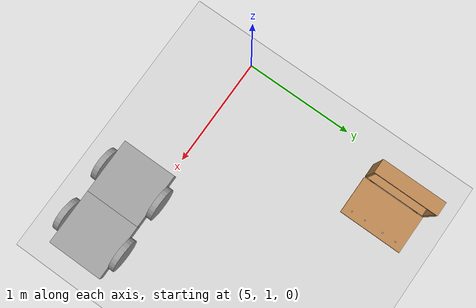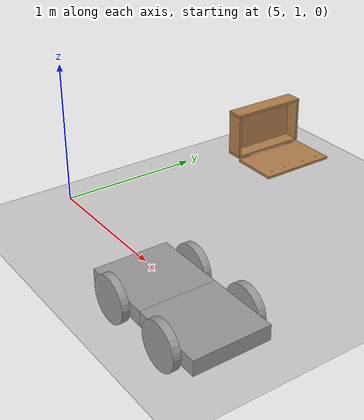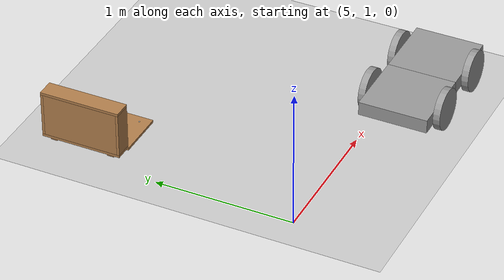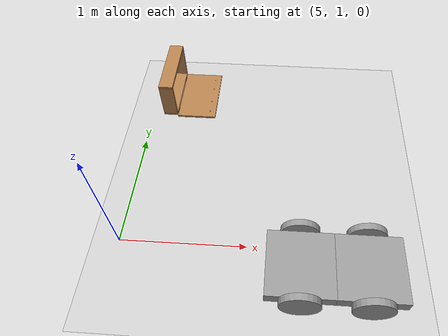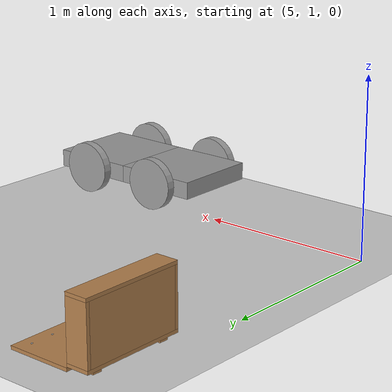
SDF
<sdf version="1.6">
 <world name="default">
  <model name="ground_plane">
   <static>1</static>
   <link name="link">
    <collision name="collision">
     <geometry><plane><normal>0 0 1</normal><size>100 100</size></plane></geometry>
     <surface>
      <contact><collide_bitmask>65535</collide_bitmask></contact>
      <friction><ode><mu>100</mu><mu2>50</mu2></ode></friction>
     </surface>
    </collision>
    <visual name="visual">
     <cast_shadows>0</cast_shadows>
     <geometry><plane><normal>0 0 1</normal><size>100 100</size></plane></geometry>
     <material>
      <script><uri>file://media/materials/scripts/gazebo.material</uri><name>Gazebo/Grey</name></script>
     </material>
    </visual>
   </link>
  </model>
  <model name="cart">
   <link name="link_0_clone">
    <pose>-0.250001 -0 0 0 -0 0</pose>
    <inertial>
     <mass>1</mass>
     <inertia>
      <ixx>0.166667</ixx>
      <ixy>0</ixy>
      <ixz>0</ixz>
      <iyy>0.166667</iyy>
      <iyz>0</iyz>
      <izz>0.166667</izz>
     </inertia>
    </inertial>
    <visual name="visual">
     <geometry><box><size>0.5 0.5 0.1</size></box></geometry>
     <material>
      <lighting>1</lighting>
      <script><uri>file://media/materials/scripts/gazebo.material</uri><name>Gazebo/Grey</name></script>
      <shader type="pixel"><normal_map>__default__</normal_map></shader>
      <ambient>0.3 0.3 0.3 1</ambient>
      <diffuse>0.7 0.7 0.7 1</diffuse>
      <specular>0.01 0.01 0.01 1</specular>
      <emissive>0 0 0 1</emissive>
     </material>
    </visual>
    <collision name="collision">
     <geometry><box><size>0.5 0.5 0.1</size></box></geometry>
     <surface>
      <friction>
       <ode><mu>1</mu><mu2>1</mu2><fdir1>0 0 0</fdir1><slip1>0</slip1><slip2>0</slip2></ode>
       <torsional>
        <coefficient>1</coefficient>
        <patch_radius>0</patch_radius>
        <surface_radius>0</surface_radius>
        <use_patch_radius>1</use_patch_radius>
        <ode><slip>0</slip></ode>
       </torsional>
      </friction>
      <bounce><restitution_coefficient>0</restitution_coefficient><threshold>1e+06</threshold></bounce>
      <contact>
       <collide_without_contact>0</collide_without_contact>
       <collide_without_contact_bitmask>1</collide_without_contact_bitmask>
       <collide_bitmask>1</collide_bitmask>
       <ode>
        <soft_cfm>0</soft_cfm>
        <soft_erp>0.2</soft_erp>
        <kp>1e+13</kp>
        <kd>1</kd>
        <max_vel>0.01</max_vel>
        <min_depth>0</min_depth>
       </ode>
       <bullet>
        <split_impulse>1</split_impulse>
        <split_impulse_penetration_threshold>-0.01</split_impulse_penetration_threshold>
        <soft_cfm>0</soft_cfm>
        <soft_erp>0.2</soft_erp>
        <kp>1e+13</kp>
        <kd>1</kd>
       </bullet>
      </contact>
     </surface>
    </collision>
   </link>
   <link name="link_0_clone_0">
    <pose>0.249999 -0 0 0 -0 0</pose>
    <inertial>
     <mass>1</mass>
     <inertia>
      <ixx>0.166667</ixx>
      <ixy>0</ixy>
      <ixz>0</ixz>
      <iyy>0.166667</iyy>
      <iyz>0</iyz>
      <izz>0.166667</izz>
     </inertia>
    </inertial>
    <visual name="visual">
     <geometry><box><size>0.5 0.5 0.1</size></box></geometry>
     <material>
      <lighting>1</lighting>
      <script><uri>file://media/materials/scripts/gazebo.material</uri><name>Gazebo/Grey</name></script>
      <shader type="pixel"><normal_map>__default__</normal_map></shader>
      <ambient>0.3 0.3 0.3 1</ambient>
      <diffuse>0.7 0.7 0.7 1</diffuse>
      <specular>0.01 0.01 0.01 1</specular>
      <emissive>0 0 0 1</emissive>
     </material>
    </visual>
    <collision name="collision">
     <geometry><box><size>0.5 0.5 0.1</size></box></geometry>
     <surface>
      <friction>
       <ode><mu>1</mu><mu2>1</mu2><fdir1>0 0 0</fdir1><slip1>0</slip1><slip2>0</slip2></ode>
       <torsional>
        <coefficient>1</coefficient>
        <patch_radius>0</patch_radius>
        <surface_radius>0</surface_radius>
        <use_patch_radius>1</use_patch_radius>
        <ode><slip>0</slip></ode>
       </torsional>
      </friction>
      <bounce><restitution_coefficient>0</restitution_coefficient><threshold>1e+06</threshold></bounce>
      <contact>
       <collide_without_contact>0</collide_without_contact>
       <collide_without_contact_bitmask>1</collide_without_contact_bitmask>
       <collide_bitmask>1</collide_bitmask>
       <ode>
        <soft_cfm>0</soft_cfm>
        <soft_erp>0.2</soft_erp>
        <kp>1e+13</kp>
        <kd>1</kd>
        <max_vel>0.01</max_vel>
        <min_depth>0</min_depth>
       </ode>
       <bullet>
        <split_impulse>1</split_impulse>
        <split_impulse_penetration_threshold>-0.01</split_impulse_penetration_threshold>
        <soft_cfm>0</soft_cfm>
        <soft_erp>0.2</soft_erp>
        <kp>1e+13</kp>
        <kd>1</kd>
       </bullet>
      </contact>
     </surface>
    </collision>
   </link>
   <link name="link_1_clone">
    <pose>-0.250001 -0.275119 0 0 -0 0</pose>
    <inertial>
     <mass>1</mass>
     <inertia><ixx>0.145833</ixx><ixy>0</ixy><ixz>0</ixz><iyy>0.145833</iyy><iyz>0</iyz><izz>0.125</izz></inertia>
    </inertial>
    <visual name="visual">
     <pose>0 0 0 1.57 -0 0</pose>
     <geometry><cylinder><radius>0.15</radius><length>0.05</length></cylinder></geometry>
     <material>
      <lighting>1</lighting>
      <script><uri>file://media/materials/scripts/gazebo.material</uri><name>Gazebo/Grey</name></script>
      <shader type="pixel"><normal_map>__default__</normal_map></shader>
      <ambient>0.3 0.3 0.3 1</ambient>
      <diffuse>0.7 0.7 0.7 1</diffuse>
      <specular>0.01 0.01 0.01 1</specular>
      <emissive>0 0 0 1</emissive>
     </material>
    </visual>
    <collision name="collision">
     <pose>0 0 0 1.5707 -0 0</pose>
     <geometry><cylinder><radius>0.15</radius><length>0.05</length></cylinder></geometry>
     <surface>
      <friction>
       <ode><mu>1</mu><mu2>1</mu2><fdir1>0 0 0</fdir1><slip1>0</slip1><slip2>0</slip2></ode>
       <torsional>
        <coefficient>1</coefficient>
        <patch_radius>0</patch_radius>
        <surface_radius>0</surface_radius>
        <use_patch_radius>1</use_patch_radius>
        <ode><slip>0</slip></ode>
       </torsional>
      </friction>
      <bounce><restitution_coefficient>0</restitution_coefficient><threshold>1e+06</threshold></bounce>
      <contact>
       <collide_without_contact>0</collide_without_contact>
       <collide_without_contact_bitmask>1</collide_without_contact_bitmask>
       <collide_bitmask>1</collide_bitmask>
       <ode>
        <soft_cfm>0</soft_cfm>
        <soft_erp>0.2</soft_erp>
        <kp>1e+13</kp>
        <kd>1</kd>
        <max_vel>0.01</max_vel>
        <min_depth>0</min_depth>
       </ode>
       <bullet>
        <split_impulse>1</split_impulse>
        <split_impulse_penetration_threshold>-0.01</split_impulse_penetration_threshold>
        <soft_cfm>0</soft_cfm>
        <soft_erp>0.2</soft_erp>
        <kp>1e+13</kp>
        <kd>1</kd>
       </bullet>
      </contact>
     </surface>
    </collision>
   </link>
   <link name="link_1_clone_0">
    <pose>-0.250001 0.275119 0 0 -0 0</pose>
    <inertial>
     <mass>1</mass>
     <inertia><ixx>0.145833</ixx><ixy>0</ixy><ixz>0</ixz><iyy>0.145833</iyy><iyz>0</iyz><izz>0.125</izz></inertia>
    </inertial>
    <visual name="visual">
     <pose>0 0 0 1.57 -0 0</pose>
     <geometry><cylinder><radius>0.15</radius><length>0.05</length></cylinder></geometry>
     <material>
      <lighting>1</lighting>
      <script><uri>file://media/materials/scripts/gazebo.material</uri><name>Gazebo/Grey</name></script>
      <shader type="pixel"><normal_map>__default__</normal_map></shader>
      <ambient>0.3 0.3 0.3 1</ambient>
      <diffuse>0.7 0.7 0.7 1</diffuse>
      <specular>0.01 0.01 0.01 1</specular>
      <emissive>0 0 0 1</emissive>
     </material>
    </visual>
    <collision name="collision">
     <pose>0 0 0 1.5707 -0 0</pose>
     <geometry><cylinder><radius>0.15</radius><length>0.05</length></cylinder></geometry>
     <surface>
      <friction>
       <ode><mu>1</mu><mu2>1</mu2><fdir1>0 0 0</fdir1><slip1>0</slip1><slip2>0</slip2></ode>
       <torsional>
        <coefficient>1</coefficient>
        <patch_radius>0</patch_radius>
        <surface_radius>0</surface_radius>
        <use_patch_radius>1</use_patch_radius>
        <ode><slip>0</slip></ode>
       </torsional>
      </friction>
      <bounce><restitution_coefficient>0</restitution_coefficient><threshold>1e+06</threshold></bounce>
      <contact>
       <collide_without_contact>0</collide_without_contact>
       <collide_without_contact_bitmask>1</collide_without_contact_bitmask>
       <collide_bitmask>1</collide_bitmask>
       <ode>
        <soft_cfm>0</soft_cfm>
        <soft_erp>0.2</soft_erp>
        <kp>1e+13</kp>
        <kd>1</kd>
        <max_vel>0.01</max_vel>
        <min_depth>0</min_depth>
       </ode>
       <bullet>
        <split_impulse>1</split_impulse>
        <split_impulse_penetration_threshold>-0.01</split_impulse_penetration_threshold>
        <soft_cfm>0</soft_cfm>
        <soft_erp>0.2</soft_erp>
        <kp>1e+13</kp>
        <kd>1</kd>
       </bullet>
      </contact>
     </surface>
    </collision>
   </link>
   <link name="link_1_clone_1">
    <pose>0.249999 -0.275119 0 0 -0 0</pose>
    <inertial>
     <mass>1</mass>
     <inertia><ixx>0.145833</ixx><ixy>0</ixy><ixz>0</ixz><iyy>0.145833</iyy><iyz>0</iyz><izz>0.125</izz></inertia>
    </inertial>
    <visual name="visual">
     <pose>0 0 0 1.57 -0 0</pose>
     <geometry><cylinder><radius>0.15</radius><length>0.05</length></cylinder></geometry>
     <material>
      <lighting>1</lighting>
      <script><uri>file://media/materials/scripts/gazebo.material</uri><name>Gazebo/Grey</name></script>
      <shader type="pixel"><normal_map>__default__</normal_map></shader>
      <ambient>0.3 0.3 0.3 1</ambient>
      <diffuse>0.7 0.7 0.7 1</diffuse>
      <specular>0.01 0.01 0.01 1</specular>
      <emissive>0 0 0 1</emissive>
     </material>
    </visual>
    <collision name="collision">
     <pose>0 0 0 1.5707 -0 0</pose>
     <geometry><cylinder><radius>0.15</radius><length>0.05</length></cylinder></geometry>
     <surface>
      <friction>
       <ode><mu>1</mu><mu2>1</mu2><fdir1>0 0 0</fdir1><slip1>0</slip1><slip2>0</slip2></ode>
       <torsional>
        <coefficient>1</coefficient>
        <patch_radius>0</patch_radius>
        <surface_radius>0</surface_radius>
        <use_patch_radius>1</use_patch_radius>
        <ode><slip>0</slip></ode>
       </torsional>
      </friction>
      <bounce><restitution_coefficient>0</restitution_coefficient><threshold>1e+06</threshold></bounce>
      <contact>
       <collide_without_contact>0</collide_without_contact>
       <collide_without_contact_bitmask>1</collide_without_contact_bitmask>
       <collide_bitmask>1</collide_bitmask>
       <ode>
        <soft_cfm>0</soft_cfm>
        <soft_erp>0.2</soft_erp>
        <kp>1e+13</kp>
        <kd>1</kd>
        <max_vel>0.01</max_vel>
        <min_depth>0</min_depth>
       </ode>
       <bullet>
        <split_impulse>1</split_impulse>
        <split_impulse_penetration_threshold>-0.01</split_impulse_penetration_threshold>
        <soft_cfm>0</soft_cfm>
        <soft_erp>0.2</soft_erp>
        <kp>1e+13</kp>
        <kd>1</kd>
       </bullet>
      </contact>
     </surface>
    </collision>
   </link>
   <link name="link_1_clone_2">
    <pose>0.249999 0.275119 0 0 -0 0</pose>
    <inertial>
     <mass>1</mass>
     <inertia><ixx>0.145833</ixx><ixy>0</ixy><ixz>0</ixz><iyy>0.145833</iyy><iyz>0</iyz><izz>0.125</izz></inertia>
    </inertial>
    <visual name="visual">
     <pose>0 0 0 1.57 -0 0</pose>
     <geometry><cylinder><radius>0.15</radius><length>0.05</length></cylinder></geometry>
     <material>
      <lighting>1</lighting>
      <script><uri>file://media/materials/scripts/gazebo.material</uri><name>Gazebo/Grey</name></script>
      <shader type="pixel"><normal_map>__default__</normal_map></shader>
      <ambient>0.3 0.3 0.3 1</ambient>
      <diffuse>0.7 0.7 0.7 1</diffuse>
      <specular>0.01 0.01 0.01 1</specular>
      <emissive>0 0 0 1</emissive>
     </material>
    </visual>
    <collision name="collision">
     <pose>0 0 0 1.5707 -0 0</pose>
     <geometry><cylinder><radius>0.15</radius><length>0.05</length></cylinder></geometry>
     <surface>
      <friction>
       <ode><mu>1</mu><mu2>1</mu2><fdir1>0 0 0</fdir1><slip1>0</slip1><slip2>0</slip2></ode>
       <torsional>
        <coefficient>1</coefficient>
        <patch_radius>0</patch_radius>
        <surface_radius>0</surface_radius>
        <use_patch_radius>1</use_patch_radius>
        <ode><slip>0</slip></ode>
       </torsional>
      </friction>
      <bounce><restitution_coefficient>0</restitution_coefficient><threshold>1e+06</threshold></bounce>
      <contact>
       <collide_without_contact>0</collide_without_contact>
       <collide_without_contact_bitmask>1</collide_without_contact_bitmask>
       <collide_bitmask>1</collide_bitmask>
       <ode>
        <soft_cfm>0</soft_cfm>
        <soft_erp>0.2</soft_erp>
        <kp>1e+13</kp>
        <kd>1</kd>
        <max_vel>0.01</max_vel>
        <min_depth>0</min_depth>
       </ode>
       <bullet>
        <split_impulse>1</split_impulse>
        <split_impulse_penetration_threshold>-0.01</split_impulse_penetration_threshold>
        <soft_cfm>0</soft_cfm>
        <soft_erp>0.2</soft_erp>
        <kp>1e+13</kp>
        <kd>1</kd>
       </bullet>
      </contact>
     </surface>
    </collision>
   </link>
   <joint name="link_0_clone_0_JOINT_5" type="revolute">
    <parent>link_0_clone_0</parent>
    <child>link_1_clone_1</child>
    <axis>
     <xyz>1 0 0</xyz>
     <use_parent_model_frame>0</use_parent_model_frame>
     <limit>
      <lower>-1.79769e+308</lower>
      <upper>1.79769e+308</upper>
      <effort>-1</effort>
      <velocity>-1</velocity>
     </limit>
     <dynamics>
      <spring_reference>0</spring_reference>
      <spring_stiffness>0</spring_stiffness>
      <damping>0</damping>
     </dynamics>
    </axis>
    <physics>
     <ode><limit><cfm>0</cfm><erp>0.2</erp></limit><suspension><cfm>0</cfm><erp>0.2</erp></suspension></ode>
    </physics>
   </joint>
   <joint name="link_0_clone_0_JOINT_6" type="revolute">
    <parent>link_0_clone_0</parent>
    <child>link_1_clone_2</child>
    <axis>
     <xyz>1 0 0</xyz>
     <use_parent_model_frame>0</use_parent_model_frame>
     <limit>
      <lower>-1.79769e+308</lower>
      <upper>1.79769e+308</upper>
      <effort>-1</effort>
      <velocity>-1</velocity>
     </limit>
     <dynamics>
      <spring_reference>0</spring_reference>
      <spring_stiffness>0</spring_stiffness>
      <damping>0</damping>
     </dynamics>
    </axis>
    <physics>
     <ode><limit><cfm>0</cfm><erp>0.2</erp></limit><suspension><cfm>0</cfm><erp>0.2</erp></suspension></ode>
    </physics>
   </joint>
   <joint name="link_0_clone_JOINT_1" type="revolute">
    <parent>link_0_clone</parent>
    <child>link_1_clone</child>
    <axis>
     <xyz>1 0 0</xyz>
     <use_parent_model_frame>0</use_parent_model_frame>
     <limit>
      <lower>-1.79769e+308</lower>
      <upper>1.79769e+308</upper>
      <effort>-1</effort>
      <velocity>-1</velocity>
     </limit>
     <dynamics>
      <spring_reference>0</spring_reference>
      <spring_stiffness>0</spring_stiffness>
      <damping>0</damping>
     </dynamics>
    </axis>
    <physics>
     <ode><limit><cfm>0</cfm><erp>0.2</erp></limit><suspension><cfm>0</cfm><erp>0.2</erp></suspension></ode>
    </physics>
   </joint>
   <joint name="link_0_clone_JOINT_2" type="revolute">
    <parent>link_0_clone</parent>
    <child>link_1_clone_0</child>
    <axis>
     <xyz>1 0 0</xyz>
     <use_parent_model_frame>0</use_parent_model_frame>
     <limit>
      <lower>-1.79769e+308</lower>
      <upper>1.79769e+308</upper>
      <effort>-1</effort>
      <velocity>-1</velocity>
     </limit>
     <dynamics>
      <spring_reference>0</spring_reference>
      <spring_stiffness>0</spring_stiffness>
      <damping>0</damping>
     </dynamics>
    </axis>
    <physics>
     <ode><limit><cfm>0</cfm><erp>0.2</erp></limit><suspension><cfm>0</cfm><erp>0.2</erp></suspension></ode>
    </physics>
   </joint>
   <joint name="link_0_clone_JOINT_4" type="fixed">
    <parent>link_0_clone</parent>
    <child>link_0_clone_0</child>
    <physics>
     <ode><limit><cfm>0</cfm><erp>0.2</erp></limit><suspension><cfm>0</cfm><erp>0.2</erp></suspension></ode>
    </physics>
   </joint>
   <static>0</static>
   <pose>6.65176 0.808128 0.15 0 -0 0.000692</pose>
  </model>
  <model name="wooden_case">
   <link name="base">
    <pose>0 0 0.024 0 -0 0</pose>
    <inertial>
     <pose>-0.022184 0 0.171592 0 -0 0</pose>
     <mass>3.96264</mass>
     <inertia>
      <ixx>0.213536</ixx>
      <ixy>0</ixy>
      <ixz>0.000779377</ixz>
      <iyy>0.0708943</iyy>
      <iyz>0</iyz>
      <izz>0.154604</izz>
     </inertia>
    </inertial>
    <collision name="collision_back">
     <pose>-0.053975 0 0.1778 0 -0 0</pose>
     <geometry><box><size>0.01905 0.5461 0.3175</size></box></geometry>
     <surface>
      <contact>
       <poissons_ratio>0.347</poissons_ratio>
       <elastic_modulus>8.8e+09</elastic_modulus>
       <ode><kp>100000</kp><kd>100</kd><max_vel>100</max_vel><min_depth>0.001</min_depth></ode>
      </contact>
      <friction>
       <torsional>
        <coefficient>1</coefficient>
        <use_patch_radius>0</use_patch_radius>
        <surface_radius>0.01</surface_radius>
       </torsional>
      </friction>
     </surface>
    </collision>
    <visual name="visual_back">
     <pose>-0.053975 0 0.1778 0 -0 0</pose>
     <geometry><box><size>0.01905 0.5461 0.3175</size></box></geometry>
     <material>
      <script><uri>file://media/materials/scripts/gazebo.material</uri><name>Gazebo/Wood</name></script>
     </material>
    </visual>
    <collision name="collision_bottom">
     <pose>0 0 0.009525 0 -0 0</pose>
     <geometry><box><size>0.127 0.5842 0.01905</size></box></geometry>
     <surface>
      <contact>
       <poissons_ratio>0.347</poissons_ratio>
       <elastic_modulus>8.8e+09</elastic_modulus>
       <ode><kp>100000</kp><kd>100</kd><max_vel>100</max_vel><min_depth>0.001</min_depth></ode>
      </contact>
      <friction>
       <torsional>
        <coefficient>1</coefficient>
        <use_patch_radius>0</use_patch_radius>
        <surface_radius>0.01</surface_radius>
       </torsional>
      </friction>
     </surface>
    </collision>
    <visual name="visual_bottom">
     <pose>0 0 0.009525 0 -0 0</pose>
     <geometry><box><size>0.127 0.5842 0.01905</size></box></geometry>
     <material>
      <script><uri>file://media/materials/scripts/gazebo.material</uri><name>Gazebo/Wood</name></script>
     </material>
    </visual>
    <collision name="collision_top">
     <pose>0 0 0.346075 0 -0 0</pose>
     <geometry><box><size>0.127 0.5842 0.01905</size></box></geometry>
     <surface>
      <contact>
       <poissons_ratio>0.347</poissons_ratio>
       <elastic_modulus>8.8e+09</elastic_modulus>
       <ode><kp>100000</kp><kd>100</kd><max_vel>100</max_vel><min_depth>0.001</min_depth></ode>
      </contact>
      <friction>
       <torsional>
        <coefficient>1</coefficient>
        <use_patch_radius>0</use_patch_radius>
        <surface_radius>0.01</surface_radius>
       </torsional>
      </friction>
     </surface>
    </collision>
    <visual name="visual_top">
     <pose>0 0 0.346075 0 -0 0</pose>
     <geometry><box><size>0.127 0.5842 0.01905</size></box></geometry>
     <material>
      <script><uri>file://media/materials/scripts/gazebo.material</uri><name>Gazebo/Wood</name></script>
     </material>
    </visual>
    <collision name="collision_left">
     <pose>0 -0.282575 0.1778 0 -0 0</pose>
     <geometry><box><size>0.127 0.01905 0.3175</size></box></geometry>
     <surface>
      <contact>
       <poissons_ratio>0.347</poissons_ratio>
       <elastic_modulus>8.8e+09</elastic_modulus>
       <ode><kp>100000</kp><kd>100</kd><max_vel>100</max_vel><min_depth>0.001</min_depth></ode>
      </contact>
      <friction>
       <torsional>
        <coefficient>1</coefficient>
        <use_patch_radius>0</use_patch_radius>
        <surface_radius>0.01</surface_radius>
       </torsional>
      </friction>
     </surface>
    </collision>
    <visual name="visual_left">
     <pose>0 -0.282575 0.1778 0 -0 0</pose>
     <geometry><box><size>0.127 0.01905 0.3175</size></box></geometry>
     <material>
      <script><uri>file://media/materials/scripts/gazebo.material</uri><name>Gazebo/Wood</name></script>
     </material>
    </visual>
    <collision name="collision_right">
     <pose>0 0.282575 0.1778 0 -0 0</pose>
     <geometry><box><size>0.127 0.01905 0.3175</size></box></geometry>
     <surface>
      <contact>
       <poissons_ratio>0.347</poissons_ratio>
       <elastic_modulus>8.8e+09</elastic_modulus>
       <ode><kp>100000</kp><kd>100</kd><max_vel>100</max_vel><min_depth>0.001</min_depth></ode>
      </contact>
      <friction>
       <torsional>
        <coefficient>1</coefficient>
        <use_patch_radius>0</use_patch_radius>
        <surface_radius>0.01</surface_radius>
       </torsional>
      </friction>
     </surface>
    </collision>
    <visual name="visual_right">
     <pose>0 0.282575 0.1778 0 -0 0</pose>
     <geometry><box><size>0.127 0.01905 0.3175</size></box></geometry>
     <material>
      <script><uri>file://media/materials/scripts/gazebo.material</uri><name>Gazebo/Wood</name></script>
     </material>
    </visual>
    <collision name="collision_block_left">
     <pose>0.0095 -0.2151 -0.012 0 -0 0</pose>
     <geometry><box><size>0.108 0.05 0.024</size></box></geometry>
     <surface>
      <contact>
       <poissons_ratio>0.347</poissons_ratio>
       <elastic_modulus>8.8e+09</elastic_modulus>
       <ode><kp>100000</kp><kd>100</kd><max_vel>100</max_vel><min_depth>0.001</min_depth></ode>
      </contact>
      <friction>
       <torsional>
        <coefficient>1</coefficient>
        <use_patch_radius>0</use_patch_radius>
        <surface_radius>0.01</surface_radius>
       </torsional>
      </friction>
     </surface>
    </collision>
    <visual name="visual_block_left">
     <pose>0.0095 -0.2151 -0.012 0 -0 0</pose>
     <geometry><box><size>0.108 0.05 0.024</size></box></geometry>
     <material>
      <script><uri>file://media/materials/scripts/gazebo.material</uri><name>Gazebo/Wood</name></script>
     </material>
    </visual>
    <collision name="collision_block_right">
     <pose>0.0095 0.2151 -0.012 0 -0 0</pose>
     <geometry><box><size>0.108 0.05 0.024</size></box></geometry>
     <surface>
      <contact>
       <poissons_ratio>0.347</poissons_ratio>
       <elastic_modulus>8.8e+09</elastic_modulus>
       <ode><kp>100000</kp><kd>100</kd><max_vel>100</max_vel><min_depth>0.001</min_depth></ode>
      </contact>
      <friction>
       <torsional>
        <coefficient>1</coefficient>
        <use_patch_radius>0</use_patch_radius>
        <surface_radius>0.01</surface_radius>
       </torsional>
      </friction>
     </surface>
    </collision>
    <visual name="visual_block_right">
     <pose>0.0095 0.2151 -0.012 0 -0 0</pose>
     <geometry><box><size>0.108 0.05 0.024</size></box></geometry>
     <material>
      <script><uri>file://media/materials/scripts/gazebo.material</uri><name>Gazebo/Wood</name></script>
     </material>
    </visual>
   </link>
   <link name="lid">
    <pose>0.243775 0 0.009525 0 -0 0</pose>
    <inertial>
     <mass>1.97874</mass>
     <inertia>
      <ixx>0.0563367</ixx>
      <ixy>0</ixy>
      <ixz>0</ixz>
      <iyy>0.020911</iyy>
      <iyz>0</iyz>
      <izz>0.0771281</izz>
     </inertia>
    </inertial>
    <collision name="collision">
     <geometry><box><size>0.3556 0.5842 0.01905</size></box></geometry>
     <surface>
      <contact>
       <poissons_ratio>0.347</poissons_ratio>
       <elastic_modulus>8.8e+09</elastic_modulus>
       <ode><kp>100000</kp><kd>100</kd><max_vel>100</max_vel><min_depth>0.001</min_depth></ode>
      </contact>
      <friction>
       <torsional>
        <coefficient>1</coefficient>
        <use_patch_radius>0</use_patch_radius>
        <surface_radius>0.01</surface_radius>
       </torsional>
      </friction>
     </surface>
    </collision>
    <visual name="visual">
     <geometry><box><size>0.3556 0.5842 0.01905</size></box></geometry>
     <material>
      <script><uri>file://media/materials/scripts/gazebo.material</uri><name>Gazebo/Wood</name></script>
     </material>
    </visual>
    <visual name="tee_nut_1">
     <pose>0.122 -0.216 0 0 -0 0</pose>
     <geometry><cylinder><radius>0.00635</radius><length>0.0192405</length></cylinder></geometry>
     <material>
      <script><uri>file://media/materials/scripts/gazebo.material</uri><name>Gazebo/Grey</name></script>
     </material>
    </visual>
    <visual name="tee_nut_2">
     <pose>0.122 -0.088 0 0 -0 0</pose>
     <geometry><cylinder><radius>0.00635</radius><length>0.0192405</length></cylinder></geometry>
     <material>
      <script><uri>file://media/materials/scripts/gazebo.material</uri><name>Gazebo/Grey</name></script>
     </material>
    </visual>
    <visual name="tee_nut_3">
     <pose>0.122 0.088 0 0 -0 0</pose>
     <geometry><cylinder><radius>0.00635</radius><length>0.0192405</length></cylinder></geometry>
     <material>
      <script><uri>file://media/materials/scripts/gazebo.material</uri><name>Gazebo/Grey</name></script>
     </material>
    </visual>
    <visual name="tee_nut_4">
     <pose>0.122 0.216 0 0 -0 0</pose>
     <geometry><cylinder><radius>0.00635</radius><length>0.0192405</length></cylinder></geometry>
     <material>
      <script><uri>file://media/materials/scripts/gazebo.material</uri><name>Gazebo/Grey</name></script>
     </material>
    </visual>
   </link>
   <joint name="lid_hinge" type="revolute">
    <pose>-0.1778 0 0.01905 0 -0 0</pose>
    <parent>base</parent>
    <child>lid</child>
    <axis>
     <xyz>0 1 0</xyz>
     <limit><upper>0.523599</upper><lower>-1.5708</lower></limit>
     <use_parent_model_frame>0</use_parent_model_frame>
     <dynamics><spring_reference>0</spring_reference><spring_stiffness>0</spring_stiffness></dynamics>
    </axis>
   </joint>
   <pose>5.16903 2.62126 -0.001057 0 -0.000427 0</pose>
  </model>
 </world>
</sdf>
